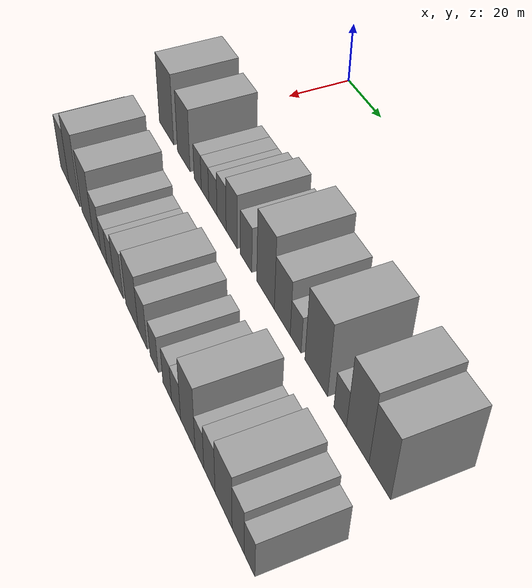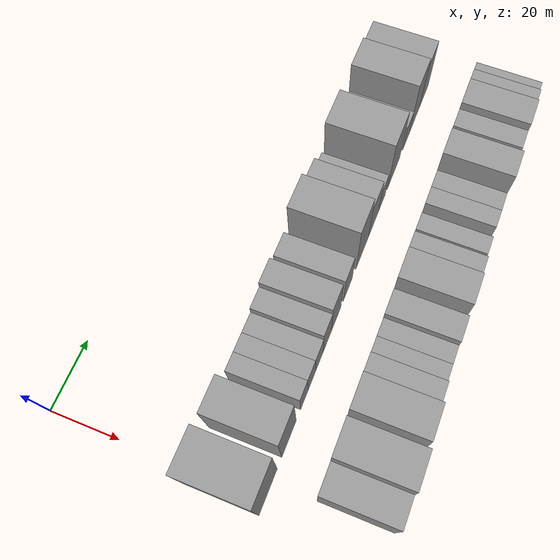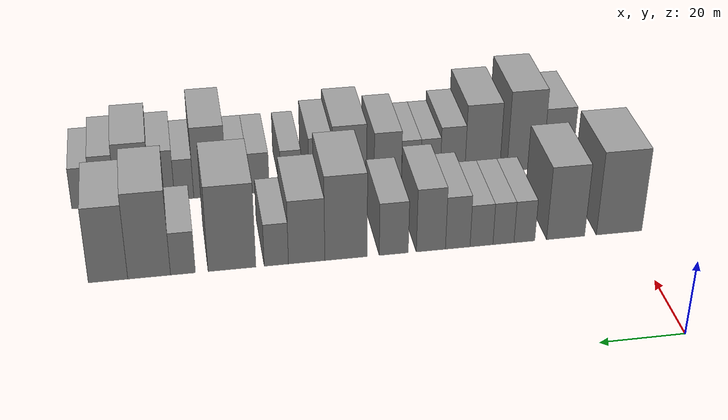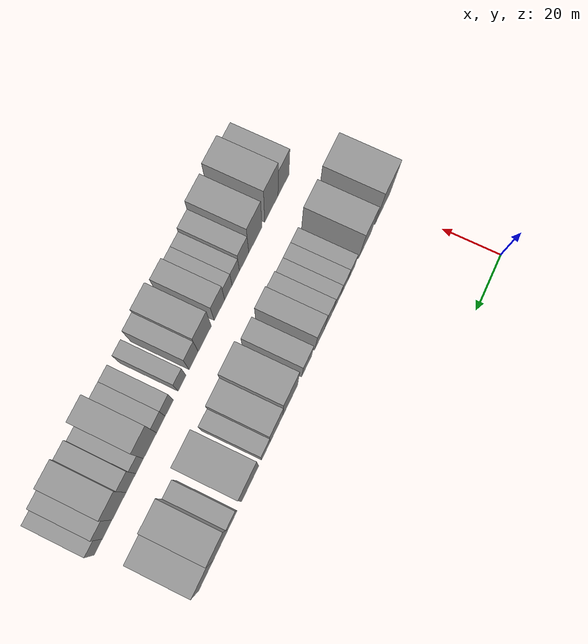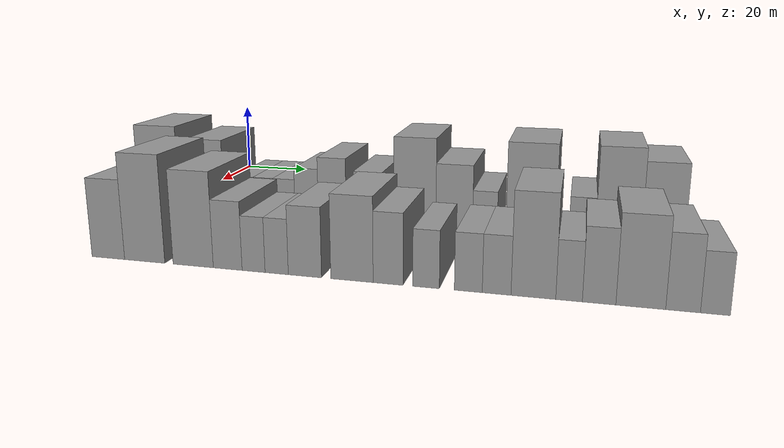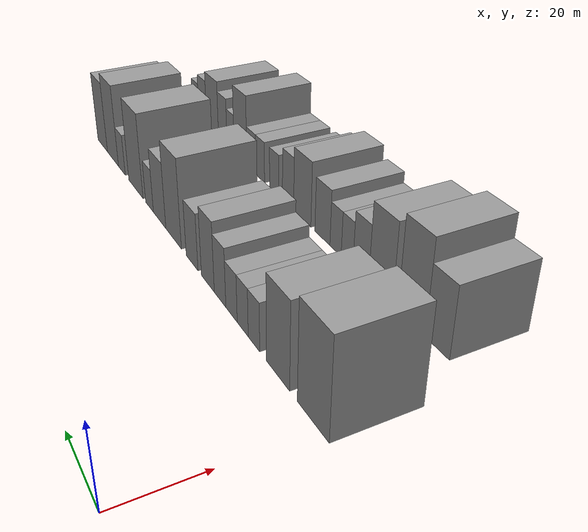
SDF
<sdf version="1.6">
 <world name="default">
  <model name="building_32">
   <static>1</static>
   <pose>50.0000 2.1094 0 0.000000 0.000000 0.000000</pose>
   <link name="link">
    <pose>0 0 12.00 0 0 0</pose>
    <collision name="collision"><geometry><box><size>20.0000 11.7132 24.0000</size></box></geometry></collision>
    <visual name="visual">
     <cast_shadows>0</cast_shadows>
     <geometry><box><size>20.0000 11.7132 24.0000</size></box></geometry>
     <material>
      <script>
       <uri>model://grey_wall/materials/scripts</uri>
       <uri>model://grey_wall/materials/textures</uri>
       <name>vrc/grey_wall</name>
      </script>
     </material>
    </visual>
   </link>
  </model>
  <model name="building_33">
   <static>1</static>
   <pose>50.0000 15.8204 0 0.000000 0.000000 0.000000</pose>
   <link name="link">
    <pose>0 0 10.50 0 0 0</pose>
    <collision name="collision"><geometry><box><size>20.0000 9.7087 21.0000</size></box></geometry></collision>
    <visual name="visual">
     <cast_shadows>0</cast_shadows>
     <geometry><box><size>20.0000 9.7087 21.0000</size></box></geometry>
     <material>
      <script>
       <uri>model://grey_wall/materials/scripts</uri>
       <uri>model://grey_wall/materials/textures</uri>
       <name>vrc/grey_wall</name>
      </script>
     </material>
    </visual>
   </link>
  </model>
  <model name="building_34">
   <static>1</static>
   <pose>50.0000 26.3142 0 0.000000 0.000000 0.000000</pose>
   <link name="link">
    <pose>0 0 6.00 0 0 0</pose>
    <collision name="collision"><geometry><box><size>20.0000 5.2790 12.0000</size></box></geometry></collision>
    <visual name="visual">
     <cast_shadows>0</cast_shadows>
     <geometry><box><size>20.0000 5.2790 12.0000</size></box></geometry>
     <material>
      <script>
       <uri>model://grey_wall/materials/scripts</uri>
       <uri>model://grey_wall/materials/textures</uri>
       <name>vrc/grey_wall</name>
      </script>
     </material>
    </visual>
   </link>
  </model>
  <model name="building_35">
   <static>1</static>
   <pose>50.0000 31.6082 0 0.000000 0.000000 0.000000</pose>
   <link name="link">
    <pose>0 0 6.00 0 0 0</pose>
    <collision name="collision"><geometry><box><size>20.0000 5.3090 12.0000</size></box></geometry></collision>
    <visual name="visual">
     <cast_shadows>0</cast_shadows>
     <geometry><box><size>20.0000 5.3090 12.0000</size></box></geometry>
     <material>
      <script>
       <uri>model://grey_wall/materials/scripts</uri>
       <uri>model://grey_wall/materials/textures</uri>
       <name>vrc/grey_wall</name>
      </script>
     </material>
    </visual>
   </link>
  </model>
  <model name="building_36">
   <static>1</static>
   <pose>50.0000 37.1352 0 0.000000 0.000000 0.000000</pose>
   <link name="link">
    <pose>0 0 6.00 0 0 0</pose>
    <collision name="collision"><geometry><box><size>20.0000 5.7449 12.0000</size></box></geometry></collision>
    <visual name="visual">
     <cast_shadows>0</cast_shadows>
     <geometry><box><size>20.0000 5.7449 12.0000</size></box></geometry>
     <material>
      <script>
       <uri>model://grey_wall/materials/scripts</uri>
       <uri>model://grey_wall/materials/textures</uri>
       <name>vrc/grey_wall</name>
      </script>
     </material>
    </visual>
   </link>
  </model>
  <model name="building_37">
   <static>1</static>
   <pose>50.0000 43.0804 0 0.000000 0.000000 0.000000</pose>
   <link name="link">
    <pose>0 0 7.50 0 0 0</pose>
    <collision name="collision"><geometry><box><size>20.0000 6.1454 15.0000</size></box></geometry></collision>
    <visual name="visual">
     <cast_shadows>0</cast_shadows>
     <geometry><box><size>20.0000 6.1454 15.0000</size></box></geometry>
     <material>
      <script>
       <uri>model://grey_wall/materials/scripts</uri>
       <uri>model://grey_wall/materials/textures</uri>
       <name>vrc/grey_wall</name>
      </script>
     </material>
    </visual>
   </link>
  </model>
  <model name="building_38">
   <static>1</static>
   <pose>50.0000 49.7688 0 0.000000 0.000000 0.000000</pose>
   <link name="link">
    <pose>0 0 9.00 0 0 0</pose>
    <collision name="collision"><geometry><box><size>20.0000 7.2315 18.0000</size></box></geometry></collision>
    <visual name="visual">
     <cast_shadows>0</cast_shadows>
     <geometry><box><size>20.0000 7.2315 18.0000</size></box></geometry>
     <material>
      <script>
       <uri>model://grey_wall/materials/scripts</uri>
       <uri>model://grey_wall/materials/textures</uri>
       <name>vrc/grey_wall</name>
      </script>
     </material>
    </visual>
   </link>
  </model>
  <model name="building_39">
   <static>1</static>
   <pose>50.0000 58.9613 0 0.000000 0.000000 0.000000</pose>
   <link name="link">
    <pose>0 0 7.50 0 0 0</pose>
    <collision name="collision"><geometry><box><size>20.0000 7.1535 15.0000</size></box></geometry></collision>
    <visual name="visual">
     <cast_shadows>0</cast_shadows>
     <geometry><box><size>20.0000 7.1535 15.0000</size></box></geometry>
     <material>
      <script>
       <uri>model://grey_wall/materials/scripts</uri>
       <uri>model://grey_wall/materials/textures</uri>
       <name>vrc/grey_wall</name>
      </script>
     </material>
    </visual>
   </link>
  </model>
  <model name="building_40">
   <static>1</static>
   <pose>50.0000 70.6889 0 0.000000 0.000000 0.000000</pose>
   <link name="link">
    <pose>0 0 12.00 0 0 0</pose>
    <collision name="collision"><geometry><box><size>20.0000 10.3017 24.0000</size></box></geometry></collision>
    <visual name="visual">
     <cast_shadows>0</cast_shadows>
     <geometry><box><size>20.0000 10.3017 24.0000</size></box></geometry>
     <material>
      <script>
       <uri>model://grey_wall/materials/scripts</uri>
       <uri>model://grey_wall/materials/textures</uri>
       <name>vrc/grey_wall</name>
      </script>
     </material>
    </visual>
   </link>
  </model>
  <model name="building_41">
   <static>1</static>
   <pose>50.0000 80.2531 0 0.000000 0.000000 0.000000</pose>
   <link name="link">
    <pose>0 0 9.00 0 0 0</pose>
    <collision name="collision"><geometry><box><size>20.0000 8.8268 18.0000</size></box></geometry></collision>
    <visual name="visual">
     <cast_shadows>0</cast_shadows>
     <geometry><box><size>20.0000 8.8268 18.0000</size></box></geometry>
     <material>
      <script>
       <uri>model://grey_wall/materials/scripts</uri>
       <uri>model://grey_wall/materials/textures</uri>
       <name>vrc/grey_wall</name>
      </script>
     </material>
    </visual>
   </link>
  </model>
  <model name="building_42">
   <static>1</static>
   <pose>50.0000 87.5807 0 0.000000 0.000000 0.000000</pose>
   <link name="link">
    <pose>0 0 6.00 0 0 0</pose>
    <collision name="collision"><geometry><box><size>20.0000 5.8285 12.0000</size></box></geometry></collision>
    <visual name="visual">
     <cast_shadows>0</cast_shadows>
     <geometry><box><size>20.0000 5.8285 12.0000</size></box></geometry>
     <material>
      <script>
       <uri>model://grey_wall/materials/scripts</uri>
       <uri>model://grey_wall/materials/textures</uri>
       <name>vrc/grey_wall</name>
      </script>
     </material>
    </visual>
   </link>
  </model>
  <model name="building_43">
   <static>1</static>
   <pose>50.0000 98.2153 0 0.000000 0.000000 0.000000</pose>
   <link name="link">
    <pose>0 0 12.00 0 0 0</pose>
    <collision name="collision"><geometry><box><size>20.0000 11.4407 24.0000</size></box></geometry></collision>
    <visual name="visual">
     <cast_shadows>0</cast_shadows>
     <geometry><box><size>20.0000 11.4407 24.0000</size></box></geometry>
     <material>
      <script>
       <uri>model://grey_wall/materials/scripts</uri>
       <uri>model://grey_wall/materials/textures</uri>
       <name>vrc/grey_wall</name>
      </script>
     </material>
    </visual>
   </link>
  </model>
  <model name="building_44">
   <static>1</static>
   <pose>50.0000 109.8829 0 0.000000 0.000000 0.000000</pose>
   <link name="link">
    <pose>0 0 6.00 0 0 0</pose>
    <collision name="collision"><geometry><box><size>20.0000 5.8946 12.0000</size></box></geometry></collision>
    <visual name="visual">
     <cast_shadows>0</cast_shadows>
     <geometry><box><size>20.0000 5.8946 12.0000</size></box></geometry>
     <material>
      <script>
       <uri>model://grey_wall/materials/scripts</uri>
       <uri>model://grey_wall/materials/textures</uri>
       <name>vrc/grey_wall</name>
      </script>
     </material>
    </visual>
   </link>
  </model>
  <model name="building_45">
   <static>1</static>
   <pose>50.0000 117.8604 0 0.000000 0.000000 0.000000</pose>
   <link name="link">
    <pose>0 0 12.00 0 0 0</pose>
    <collision name="collision"><geometry><box><size>20.0000 10.0603 24.0000</size></box></geometry></collision>
    <visual name="visual">
     <cast_shadows>0</cast_shadows>
     <geometry><box><size>20.0000 10.0603 24.0000</size></box></geometry>
     <material>
      <script>
       <uri>model://grey_wall/materials/scripts</uri>
       <uri>model://grey_wall/materials/textures</uri>
       <name>vrc/grey_wall</name>
      </script>
     </material>
    </visual>
   </link>
  </model>
  <model name="building_46">
   <static>1</static>
   <pose>50.0000 127.4935 0 0.000000 0.000000 0.000000</pose>
   <link name="link">
    <pose>0 0 10.50 0 0 0</pose>
    <collision name="collision"><geometry><box><size>20.0000 9.2059 21.0000</size></box></geometry></collision>
    <visual name="visual">
     <cast_shadows>0</cast_shadows>
     <geometry><box><size>20.0000 9.2059 21.0000</size></box></geometry>
     <material>
      <script>
       <uri>model://grey_wall/materials/scripts</uri>
       <uri>model://grey_wall/materials/textures</uri>
       <name>vrc/grey_wall</name>
      </script>
     </material>
    </visual>
   </link>
  </model>
  <model name="building_98">
   <static>1</static>
   <pose>82.0000 8.5804 0 0.000000 0.000000 0.000000</pose>
   <link name="link">
    <pose>0 0 9.00 0 0 0</pose>
    <collision name="collision"><geometry><box><size>20.0000 8.1538 18.0000</size></box></geometry></collision>
    <visual name="visual">
     <cast_shadows>0</cast_shadows>
     <geometry><box><size>20.0000 8.1538 18.0000</size></box></geometry>
     <material>
      <script>
       <uri>model://grey_wall/materials/scripts</uri>
       <uri>model://grey_wall/materials/textures</uri>
       <name>vrc/grey_wall</name>
      </script>
     </material>
    </visual>
   </link>
  </model>
  <model name="building_99">
   <static>1</static>
   <pose>82.0000 17.5624 0 0.000000 0.000000 0.000000</pose>
   <link name="link">
    <pose>0 0 12.00 0 0 0</pose>
    <collision name="collision"><geometry><box><size>20.0000 9.8102 24.0000</size></box></geometry></collision>
    <visual name="visual">
     <cast_shadows>0</cast_shadows>
     <geometry><box><size>20.0000 9.8102 24.0000</size></box></geometry>
     <material>
      <script>
       <uri>model://grey_wall/materials/scripts</uri>
       <uri>model://grey_wall/materials/textures</uri>
       <name>vrc/grey_wall</name>
      </script>
     </material>
    </visual>
   </link>
  </model>
  <model name="building_100">
   <static>1</static>
   <pose>82.0000 29.2115 0 0.000000 0.000000 0.000000</pose>
   <link name="link">
    <pose>0 0 10.50 0 0 0</pose>
    <collision name="collision"><geometry><box><size>20.0000 9.4880 21.0000</size></box></geometry></collision>
    <visual name="visual">
     <cast_shadows>0</cast_shadows>
     <geometry><box><size>20.0000 9.4880 21.0000</size></box></geometry>
     <material>
      <script>
       <uri>model://grey_wall/materials/scripts</uri>
       <uri>model://grey_wall/materials/textures</uri>
       <name>vrc/grey_wall</name>
      </script>
     </material>
    </visual>
   </link>
  </model>
  <model name="building_101">
   <static>1</static>
   <pose>82.0000 37.2784 0 0.000000 0.000000 0.000000</pose>
   <link name="link">
    <pose>0 0 7.50 0 0 0</pose>
    <collision name="collision"><geometry><box><size>20.0000 6.6459 15.0000</size></box></geometry></collision>
    <visual name="visual">
     <cast_shadows>0</cast_shadows>
     <geometry><box><size>20.0000 6.6459 15.0000</size></box></geometry>
     <material>
      <script>
       <uri>model://grey_wall/materials/scripts</uri>
       <uri>model://grey_wall/materials/textures</uri>
       <name>vrc/grey_wall</name>
      </script>
     </material>
    </visual>
   </link>
  </model>
  <model name="building_102">
   <static>1</static>
   <pose>82.0000 43.2062 0 0.000000 0.000000 0.000000</pose>
   <link name="link">
    <pose>0 0 6.00 0 0 0</pose>
    <collision name="collision"><geometry><box><size>20.0000 5.2098 12.0000</size></box></geometry></collision>
    <visual name="visual">
     <cast_shadows>0</cast_shadows>
     <geometry><box><size>20.0000 5.2098 12.0000</size></box></geometry>
     <material>
      <script>
       <uri>model://grey_wall/materials/scripts</uri>
       <uri>model://grey_wall/materials/textures</uri>
       <name>vrc/grey_wall</name>
      </script>
     </material>
    </visual>
   </link>
  </model>
  <model name="building_103">
   <static>1</static>
   <pose>82.0000 48.4002 0 0.000000 0.000000 0.000000</pose>
   <link name="link">
    <pose>0 0 6.00 0 0 0</pose>
    <collision name="collision"><geometry><box><size>20.0000 5.1782 12.0000</size></box></geometry></collision>
    <visual name="visual">
     <cast_shadows>0</cast_shadows>
     <geometry><box><size>20.0000 5.1782 12.0000</size></box></geometry>
     <material>
      <script>
       <uri>model://grey_wall/materials/scripts</uri>
       <uri>model://grey_wall/materials/textures</uri>
       <name>vrc/grey_wall</name>
      </script>
     </material>
    </visual>
   </link>
  </model>
  <model name="building_104">
   <static>1</static>
   <pose>82.0000 54.6306 0 0.000000 0.000000 0.000000</pose>
   <link name="link">
    <pose>0 0 7.50 0 0 0</pose>
    <collision name="collision"><geometry><box><size>20.0000 7.2825 15.0000</size></box></geometry></collision>
    <visual name="visual">
     <cast_shadows>0</cast_shadows>
     <geometry><box><size>20.0000 7.2825 15.0000</size></box></geometry>
     <material>
      <script>
       <uri>model://grey_wall/materials/scripts</uri>
       <uri>model://grey_wall/materials/textures</uri>
       <name>vrc/grey_wall</name>
      </script>
     </material>
    </visual>
   </link>
  </model>
  <model name="building_105">
   <static>1</static>
   <pose>82.0000 64.7690 0 0.000000 0.000000 0.000000</pose>
   <link name="link">
    <pose>0 0 9.00 0 0 0</pose>
    <collision name="collision"><geometry><box><size>20.0000 8.9944 18.0000</size></box></geometry></collision>
    <visual name="visual">
     <cast_shadows>0</cast_shadows>
     <geometry><box><size>20.0000 8.9944 18.0000</size></box></geometry>
     <material>
      <script>
       <uri>model://grey_wall/materials/scripts</uri>
       <uri>model://grey_wall/materials/textures</uri>
       <name>vrc/grey_wall</name>
      </script>
     </material>
    </visual>
   </link>
  </model>
  <model name="building_106">
   <static>1</static>
   <pose>82.0000 72.3655 0 0.000000 0.000000 0.000000</pose>
   <link name="link">
    <pose>0 0 7.50 0 0 0</pose>
    <collision name="collision"><geometry><box><size>20.0000 6.1985 15.0000</size></box></geometry></collision>
    <visual name="visual">
     <cast_shadows>0</cast_shadows>
     <geometry><box><size>20.0000 6.1985 15.0000</size></box></geometry>
     <material>
      <script>
       <uri>model://grey_wall/materials/scripts</uri>
       <uri>model://grey_wall/materials/textures</uri>
       <name>vrc/grey_wall</name>
      </script>
     </material>
    </visual>
   </link>
  </model>
  <model name="building_107">
   <static>1</static>
   <pose>82.0000 80.1592 0 0.000000 0.000000 0.000000</pose>
   <link name="link">
    <pose>0 0 6.00 0 0 0</pose>
    <collision name="collision"><geometry><box><size>20.0000 5.3889 12.0000</size></box></geometry></collision>
    <visual name="visual">
     <cast_shadows>0</cast_shadows>
     <geometry><box><size>20.0000 5.3889 12.0000</size></box></geometry>
     <material>
      <script>
       <uri>model://grey_wall/materials/scripts</uri>
       <uri>model://grey_wall/materials/textures</uri>
       <name>vrc/grey_wall</name>
      </script>
     </material>
    </visual>
   </link>
  </model>
  <model name="building_108">
   <static>1</static>
   <pose>82.0000 88.6038 0 0.000000 0.000000 0.000000</pose>
   <link name="link">
    <pose>0 0 6.00 0 0 0</pose>
    <collision name="collision"><geometry><box><size>20.0000 5.5002 12.0000</size></box></geometry></collision>
    <visual name="visual">
     <cast_shadows>0</cast_shadows>
     <geometry><box><size>20.0000 5.5002 12.0000</size></box></geometry>
     <material>
      <script>
       <uri>model://grey_wall/materials/scripts</uri>
       <uri>model://grey_wall/materials/textures</uri>
       <name>vrc/grey_wall</name>
      </script>
     </material>
    </visual>
   </link>
  </model>
  <model name="building_109">
   <static>1</static>
   <pose>82.0000 94.1390 0 0.000000 0.000000 0.000000</pose>
   <link name="link">
    <pose>0 0 6.00 0 0 0</pose>
    <collision name="collision"><geometry><box><size>20.0000 5.5704 12.0000</size></box></geometry></collision>
    <visual name="visual">
     <cast_shadows>0</cast_shadows>
     <geometry><box><size>20.0000 5.5704 12.0000</size></box></geometry>
     <material>
      <script>
       <uri>model://grey_wall/materials/scripts</uri>
       <uri>model://grey_wall/materials/textures</uri>
       <name>vrc/grey_wall</name>
      </script>
     </material>
    </visual>
   </link>
  </model>
  <model name="building_110">
   <static>1</static>
   <pose>82.0000 101.1667 0 0.000000 0.000000 0.000000</pose>
   <link name="link">
    <pose>0 0 10.50 0 0 0</pose>
    <collision name="collision"><geometry><box><size>20.0000 8.4850 21.0000</size></box></geometry></collision>
    <visual name="visual">
     <cast_shadows>0</cast_shadows>
     <geometry><box><size>20.0000 8.4850 21.0000</size></box></geometry>
     <material>
      <script>
       <uri>model://grey_wall/materials/scripts</uri>
       <uri>model://grey_wall/materials/textures</uri>
       <name>vrc/grey_wall</name>
      </script>
     </material>
    </visual>
   </link>
  </model>
  <model name="building_111">
   <static>1</static>
   <pose>82.0000 107.8712 0 0.000000 0.000000 0.000000</pose>
   <link name="link">
    <pose>0 0 6.00 0 0 0</pose>
    <collision name="collision"><geometry><box><size>20.0000 4.9240 12.0000</size></box></geometry></collision>
    <visual name="visual">
     <cast_shadows>0</cast_shadows>
     <geometry><box><size>20.0000 4.9240 12.0000</size></box></geometry>
     <material>
      <script>
       <uri>model://grey_wall/materials/scripts</uri>
       <uri>model://grey_wall/materials/textures</uri>
       <name>vrc/grey_wall</name>
      </script>
     </material>
    </visual>
   </link>
  </model>
  <model name="building_112">
   <static>1</static>
   <pose>82.0000 113.3877 0 0.000000 0.000000 0.000000</pose>
   <link name="link">
    <pose>0 0 7.50 0 0 0</pose>
    <collision name="collision"><geometry><box><size>20.0000 6.1090 15.0000</size></box></geometry></collision>
    <visual name="visual">
     <cast_shadows>0</cast_shadows>
     <geometry><box><size>20.0000 6.1090 15.0000</size></box></geometry>
     <material>
      <script>
       <uri>model://grey_wall/materials/scripts</uri>
       <uri>model://grey_wall/materials/textures</uri>
       <name>vrc/grey_wall</name>
      </script>
     </material>
    </visual>
   </link>
  </model>
  <model name="building_113">
   <static>1</static>
   <pose>82.0000 120.8658 0 0.000000 0.000000 0.000000</pose>
   <link name="link">
    <pose>0 0 9.00 0 0 0</pose>
    <collision name="collision"><geometry><box><size>20.0000 8.8472 18.0000</size></box></geometry></collision>
    <visual name="visual">
     <cast_shadows>0</cast_shadows>
     <geometry><box><size>20.0000 8.8472 18.0000</size></box></geometry>
     <material>
      <script>
       <uri>model://grey_wall/materials/scripts</uri>
       <uri>model://grey_wall/materials/textures</uri>
       <name>vrc/grey_wall</name>
      </script>
     </material>
    </visual>
   </link>
  </model>
  <model name="building_114">
   <static>1</static>
   <pose>82.0000 128.2970 0 0.000000 0.000000 0.000000</pose>
   <link name="link">
    <pose>0 0 7.50 0 0 0</pose>
    <collision name="collision"><geometry><box><size>20.0000 6.0151 15.0000</size></box></geometry></collision>
    <visual name="visual">
     <cast_shadows>0</cast_shadows>
     <geometry><box><size>20.0000 6.0151 15.0000</size></box></geometry>
     <material>
      <script>
       <uri>model://grey_wall/materials/scripts</uri>
       <uri>model://grey_wall/materials/textures</uri>
       <name>vrc/grey_wall</name>
      </script>
     </material>
    </visual>
   </link>
  </model>
  <model name="building_115">
   <static>1</static>
   <pose>82.0000 133.8559 0 0.000000 0.000000 0.000000</pose>
   <link name="link">
    <pose>0 0 6.00 0 0 0</pose>
    <collision name="collision"><geometry><box><size>20.0000 5.1026 12.0000</size></box></geometry></collision>
    <visual name="visual">
     <cast_shadows>0</cast_shadows>
     <geometry><box><size>20.0000 5.1026 12.0000</size></box></geometry>
     <material>
      <script>
       <uri>model://grey_wall/materials/scripts</uri>
       <uri>model://grey_wall/materials/textures</uri>
       <name>vrc/grey_wall</name>
      </script>
     </material>
    </visual>
   </link>
  </model>
 </world>
</sdf>
